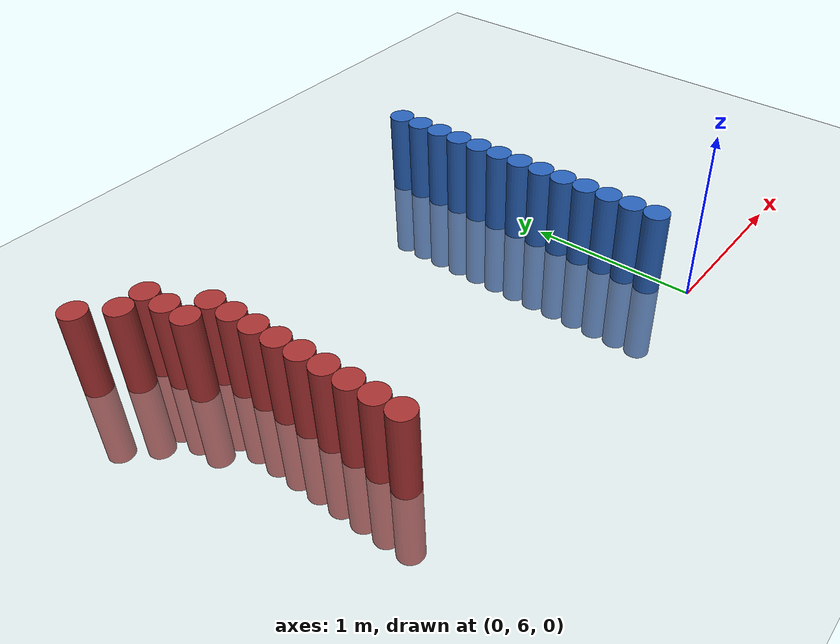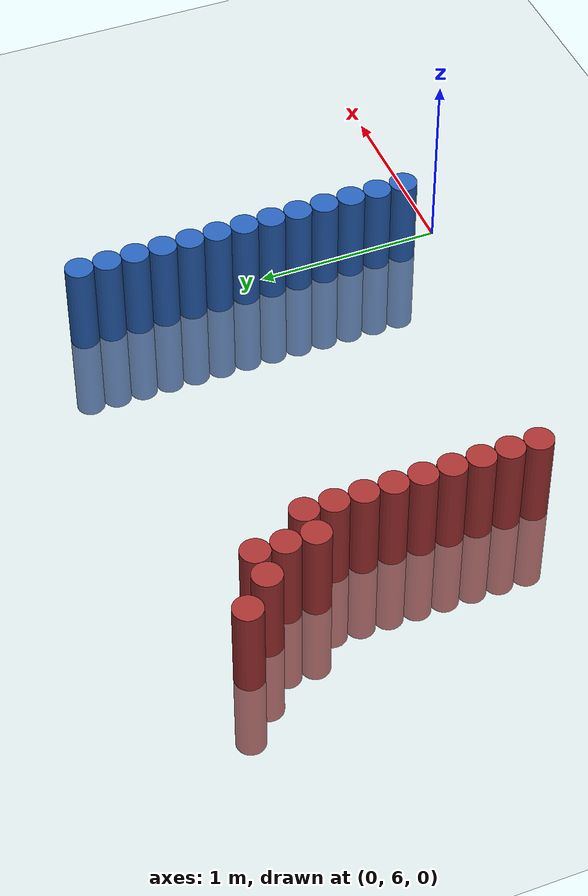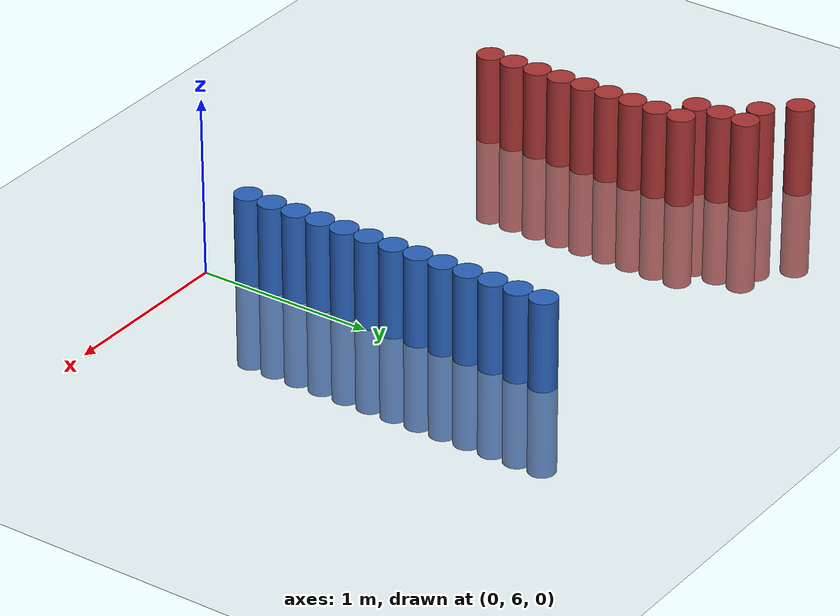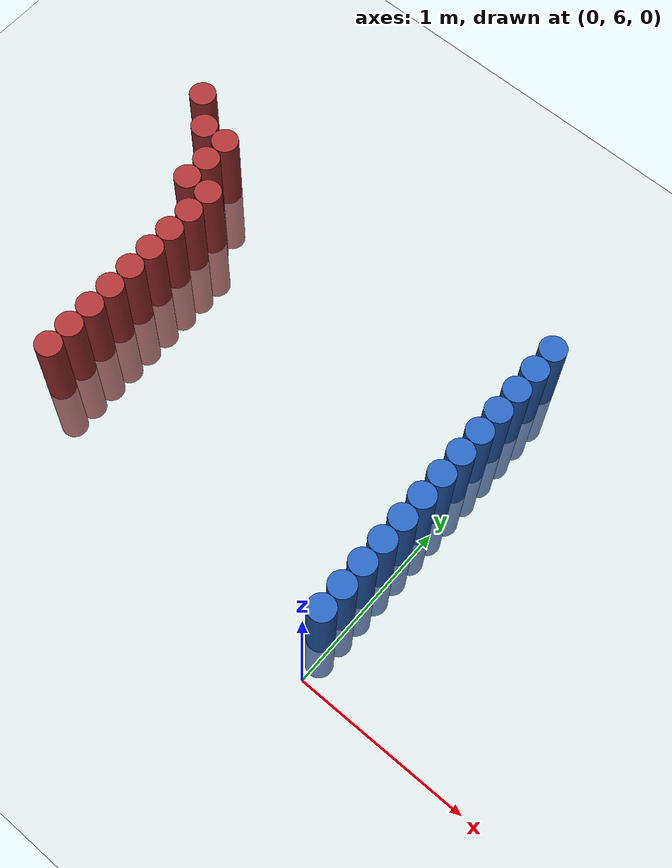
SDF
<sdf version="1.6">
 <world name="default">
  <model name="ground_plane">
   <static>1</static>
   <link name="link">
    <collision name="collision">
     <geometry><plane><normal>0 0 1</normal><size>100 100</size></plane></geometry>
     <surface><friction><ode><mu>100</mu><mu2>50</mu2></ode></friction></surface>
    </collision>
    <visual name="visual">
     <cast_shadows>0</cast_shadows>
     <geometry><plane><normal>0 0 1</normal><size>100 100</size></plane></geometry>
     <material>
      <script><uri>file://media/materials/scripts/gazebo.material</uri><name>Gazebo/Grey</name></script>
     </material>
    </visual>
   </link>
  </model>
  <model name="unit_cylinder_355">
   <static>1</static>
   <pose>-2.475000 8.025000 0.000000 0.000000 0.000000 0.000000</pose>
   <link name="link">
    <inertial>
     <mass>1</mass>
     <inertia><ixx>0.145833</ixx><ixy>0</ixy><ixz>0</ixz><iyy>0.145833</iyy><iyz>0</iyz><izz>0.125</izz></inertia>
    </inertial>
    <collision name="collision">
     <geometry><cylinder><radius>0.075000</radius><length>1</length></cylinder></geometry>
    </collision>
    <visual name="visual">
     <geometry><cylinder><radius>0.075000</radius><length>1</length></cylinder></geometry>
     <material>
      <ambient>0.648000 0.192000 0.192000 1</ambient>
      <diffuse>0.648000 0.192000 0.192000 1</diffuse>
     </material>
     <material>
      <script><name>Gazebo/Grey</name><uri>file://media/materials/scripts/gazebo.material</uri></script>
     </material>
    </visual>
   </link>
  </model>
  <model name="unit_cylinder_359">
   <static>1</static>
   <pose>-2.325000 7.875000 0.000000 0.000000 0.000000 0.000000</pose>
   <link name="link">
    <inertial>
     <mass>1</mass>
     <inertia><ixx>0.145833</ixx><ixy>0</ixy><ixz>0</ixz><iyy>0.145833</iyy><iyz>0</iyz><izz>0.125</izz></inertia>
    </inertial>
    <collision name="collision">
     <geometry><cylinder><radius>0.075000</radius><length>1</length></cylinder></geometry>
    </collision>
    <visual name="visual">
     <geometry><cylinder><radius>0.075000</radius><length>1</length></cylinder></geometry>
     <material>
      <ambient>0.648000 0.192000 0.192000 1</ambient>
      <diffuse>0.648000 0.192000 0.192000 1</diffuse>
     </material>
     <material>
      <script><name>Gazebo/Grey</name><uri>file://media/materials/scripts/gazebo.material</uri></script>
     </material>
    </visual>
   </link>
  </model>
  <model name="unit_cylinder_361">
   <static>1</static>
   <pose>-2.175000 7.575000 0.000000 0.000000 0.000000 0.000000</pose>
   <link name="link">
    <inertial>
     <mass>1</mass>
     <inertia><ixx>0.145833</ixx><ixy>0</ixy><ixz>0</ixz><iyy>0.145833</iyy><iyz>0</iyz><izz>0.125</izz></inertia>
    </inertial>
    <collision name="collision">
     <geometry><cylinder><radius>0.075000</radius><length>1</length></cylinder></geometry>
    </collision>
    <visual name="visual">
     <geometry><cylinder><radius>0.075000</radius><length>1</length></cylinder></geometry>
     <material>
      <ambient>0.648000 0.192000 0.192000 1</ambient>
      <diffuse>0.648000 0.192000 0.192000 1</diffuse>
     </material>
     <material>
      <script><name>Gazebo/Grey</name><uri>file://media/materials/scripts/gazebo.material</uri></script>
     </material>
    </visual>
   </link>
  </model>
  <model name="unit_cylinder_362">
   <static>1</static>
   <pose>-2.175000 7.725000 0.000000 0.000000 0.000000 0.000000</pose>
   <link name="link">
    <inertial>
     <mass>1</mass>
     <inertia><ixx>0.145833</ixx><ixy>0</ixy><ixz>0</ixz><iyy>0.145833</iyy><iyz>0</iyz><izz>0.125</izz></inertia>
    </inertial>
    <collision name="collision">
     <geometry><cylinder><radius>0.075000</radius><length>1</length></cylinder></geometry>
    </collision>
    <visual name="visual">
     <geometry><cylinder><radius>0.075000</radius><length>1</length></cylinder></geometry>
     <material>
      <ambient>0.648000 0.192000 0.192000 1</ambient>
      <diffuse>0.648000 0.192000 0.192000 1</diffuse>
     </material>
     <material>
      <script><name>Gazebo/Grey</name><uri>file://media/materials/scripts/gazebo.material</uri></script>
     </material>
    </visual>
   </link>
  </model>
  <model name="unit_cylinder_363">
   <static>1</static>
   <pose>-2.175000 7.875000 0.000000 0.000000 0.000000 0.000000</pose>
   <link name="link">
    <inertial>
     <mass>1</mass>
     <inertia><ixx>0.145833</ixx><ixy>0</ixy><ixz>0</ixz><iyy>0.145833</iyy><iyz>0</iyz><izz>0.125</izz></inertia>
    </inertial>
    <collision name="collision">
     <geometry><cylinder><radius>0.075000</radius><length>1</length></cylinder></geometry>
    </collision>
    <visual name="visual">
     <geometry><cylinder><radius>0.075000</radius><length>1</length></cylinder></geometry>
     <material>
      <ambient>0.648000 0.192000 0.192000 1</ambient>
      <diffuse>0.648000 0.192000 0.192000 1</diffuse>
     </material>
     <material>
      <script><name>Gazebo/Grey</name><uri>file://media/materials/scripts/gazebo.material</uri></script>
     </material>
    </visual>
   </link>
  </model>
  <model name="unit_cylinder_373">
   <static>1</static>
   <pose>-2.025000 6.375000 0.000000 0.000000 0.000000 0.000000</pose>
   <link name="link">
    <inertial>
     <mass>1</mass>
     <inertia><ixx>0.145833</ixx><ixy>0</ixy><ixz>0</ixz><iyy>0.145833</iyy><iyz>0</iyz><izz>0.125</izz></inertia>
    </inertial>
    <collision name="collision">
     <geometry><cylinder><radius>0.075000</radius><length>1</length></cylinder></geometry>
    </collision>
    <visual name="visual">
     <geometry><cylinder><radius>0.075000</radius><length>1</length></cylinder></geometry>
     <material>
      <ambient>0.648000 0.192000 0.192000 1</ambient>
      <diffuse>0.648000 0.192000 0.192000 1</diffuse>
     </material>
     <material>
      <script><name>Gazebo/Grey</name><uri>file://media/materials/scripts/gazebo.material</uri></script>
     </material>
    </visual>
   </link>
  </model>
  <model name="unit_cylinder_374">
   <static>1</static>
   <pose>-2.025000 6.525000 0.000000 0.000000 0.000000 0.000000</pose>
   <link name="link">
    <inertial>
     <mass>1</mass>
     <inertia><ixx>0.145833</ixx><ixy>0</ixy><ixz>0</ixz><iyy>0.145833</iyy><iyz>0</iyz><izz>0.125</izz></inertia>
    </inertial>
    <collision name="collision">
     <geometry><cylinder><radius>0.075000</radius><length>1</length></cylinder></geometry>
    </collision>
    <visual name="visual">
     <geometry><cylinder><radius>0.075000</radius><length>1</length></cylinder></geometry>
     <material>
      <ambient>0.648000 0.192000 0.192000 1</ambient>
      <diffuse>0.648000 0.192000 0.192000 1</diffuse>
     </material>
     <material>
      <script><name>Gazebo/Grey</name><uri>file://media/materials/scripts/gazebo.material</uri></script>
     </material>
    </visual>
   </link>
  </model>
  <model name="unit_cylinder_375">
   <static>1</static>
   <pose>-2.025000 6.675000 0.000000 0.000000 0.000000 0.000000</pose>
   <link name="link">
    <inertial>
     <mass>1</mass>
     <inertia><ixx>0.145833</ixx><ixy>0</ixy><ixz>0</ixz><iyy>0.145833</iyy><iyz>0</iyz><izz>0.125</izz></inertia>
    </inertial>
    <collision name="collision">
     <geometry><cylinder><radius>0.075000</radius><length>1</length></cylinder></geometry>
    </collision>
    <visual name="visual">
     <geometry><cylinder><radius>0.075000</radius><length>1</length></cylinder></geometry>
     <material>
      <ambient>0.648000 0.192000 0.192000 1</ambient>
      <diffuse>0.648000 0.192000 0.192000 1</diffuse>
     </material>
     <material>
      <script><name>Gazebo/Grey</name><uri>file://media/materials/scripts/gazebo.material</uri></script>
     </material>
    </visual>
   </link>
  </model>
  <model name="unit_cylinder_376">
   <static>1</static>
   <pose>-2.025000 6.825000 0.000000 0.000000 0.000000 0.000000</pose>
   <link name="link">
    <inertial>
     <mass>1</mass>
     <inertia><ixx>0.145833</ixx><ixy>0</ixy><ixz>0</ixz><iyy>0.145833</iyy><iyz>0</iyz><izz>0.125</izz></inertia>
    </inertial>
    <collision name="collision">
     <geometry><cylinder><radius>0.075000</radius><length>1</length></cylinder></geometry>
    </collision>
    <visual name="visual">
     <geometry><cylinder><radius>0.075000</radius><length>1</length></cylinder></geometry>
     <material>
      <ambient>0.648000 0.192000 0.192000 1</ambient>
      <diffuse>0.648000 0.192000 0.192000 1</diffuse>
     </material>
     <material>
      <script><name>Gazebo/Grey</name><uri>file://media/materials/scripts/gazebo.material</uri></script>
     </material>
    </visual>
   </link>
  </model>
  <model name="unit_cylinder_377">
   <static>1</static>
   <pose>-2.025000 6.975000 0.000000 0.000000 0.000000 0.000000</pose>
   <link name="link">
    <inertial>
     <mass>1</mass>
     <inertia><ixx>0.145833</ixx><ixy>0</ixy><ixz>0</ixz><iyy>0.145833</iyy><iyz>0</iyz><izz>0.125</izz></inertia>
    </inertial>
    <collision name="collision">
     <geometry><cylinder><radius>0.075000</radius><length>1</length></cylinder></geometry>
    </collision>
    <visual name="visual">
     <geometry><cylinder><radius>0.075000</radius><length>1</length></cylinder></geometry>
     <material>
      <ambient>0.648000 0.192000 0.192000 1</ambient>
      <diffuse>0.648000 0.192000 0.192000 1</diffuse>
     </material>
     <material>
      <script><name>Gazebo/Grey</name><uri>file://media/materials/scripts/gazebo.material</uri></script>
     </material>
    </visual>
   </link>
  </model>
  <model name="unit_cylinder_378">
   <static>1</static>
   <pose>-2.025000 7.125000 0.000000 0.000000 0.000000 0.000000</pose>
   <link name="link">
    <inertial>
     <mass>1</mass>
     <inertia><ixx>0.145833</ixx><ixy>0</ixy><ixz>0</ixz><iyy>0.145833</iyy><iyz>0</iyz><izz>0.125</izz></inertia>
    </inertial>
    <collision name="collision">
     <geometry><cylinder><radius>0.075000</radius><length>1</length></cylinder></geometry>
    </collision>
    <visual name="visual">
     <geometry><cylinder><radius>0.075000</radius><length>1</length></cylinder></geometry>
     <material>
      <ambient>0.648000 0.192000 0.192000 1</ambient>
      <diffuse>0.648000 0.192000 0.192000 1</diffuse>
     </material>
     <material>
      <script><name>Gazebo/Grey</name><uri>file://media/materials/scripts/gazebo.material</uri></script>
     </material>
    </visual>
   </link>
  </model>
  <model name="unit_cylinder_379">
   <static>1</static>
   <pose>-2.025000 7.275000 0.000000 0.000000 0.000000 0.000000</pose>
   <link name="link">
    <inertial>
     <mass>1</mass>
     <inertia><ixx>0.145833</ixx><ixy>0</ixy><ixz>0</ixz><iyy>0.145833</iyy><iyz>0</iyz><izz>0.125</izz></inertia>
    </inertial>
    <collision name="collision">
     <geometry><cylinder><radius>0.075000</radius><length>1</length></cylinder></geometry>
    </collision>
    <visual name="visual">
     <geometry><cylinder><radius>0.075000</radius><length>1</length></cylinder></geometry>
     <material>
      <ambient>0.648000 0.192000 0.192000 1</ambient>
      <diffuse>0.648000 0.192000 0.192000 1</diffuse>
     </material>
     <material>
      <script><name>Gazebo/Grey</name><uri>file://media/materials/scripts/gazebo.material</uri></script>
     </material>
    </visual>
   </link>
  </model>
  <model name="unit_cylinder_380">
   <static>1</static>
   <pose>-2.025000 7.425000 0.000000 0.000000 0.000000 0.000000</pose>
   <link name="link">
    <inertial>
     <mass>1</mass>
     <inertia><ixx>0.145833</ixx><ixy>0</ixy><ixz>0</ixz><iyy>0.145833</iyy><iyz>0</iyz><izz>0.125</izz></inertia>
    </inertial>
    <collision name="collision">
     <geometry><cylinder><radius>0.075000</radius><length>1</length></cylinder></geometry>
    </collision>
    <visual name="visual">
     <geometry><cylinder><radius>0.075000</radius><length>1</length></cylinder></geometry>
     <material>
      <ambient>0.648000 0.192000 0.192000 1</ambient>
      <diffuse>0.648000 0.192000 0.192000 1</diffuse>
     </material>
     <material>
      <script><name>Gazebo/Grey</name><uri>file://media/materials/scripts/gazebo.material</uri></script>
     </material>
    </visual>
   </link>
  </model>
  <model name="unit_cylinder_381">
   <static>1</static>
   <pose>-2.025000 7.575000 0.000000 0.000000 0.000000 0.000000</pose>
   <link name="link">
    <inertial>
     <mass>1</mass>
     <inertia><ixx>0.145833</ixx><ixy>0</ixy><ixz>0</ixz><iyy>0.145833</iyy><iyz>0</iyz><izz>0.125</izz></inertia>
    </inertial>
    <collision name="collision">
     <geometry><cylinder><radius>0.075000</radius><length>1</length></cylinder></geometry>
    </collision>
    <visual name="visual">
     <geometry><cylinder><radius>0.075000</radius><length>1</length></cylinder></geometry>
     <material>
      <ambient>0.648000 0.192000 0.192000 1</ambient>
      <diffuse>0.648000 0.192000 0.192000 1</diffuse>
     </material>
     <material>
      <script><name>Gazebo/Grey</name><uri>file://media/materials/scripts/gazebo.material</uri></script>
     </material>
    </visual>
   </link>
  </model>
  <model name="unit_cylinder_414">
   <static>1</static>
   <pose>-0.075000 6.225000 0.000000 0.000000 0.000000 0.000000</pose>
   <link name="link">
    <inertial>
     <mass>1</mass>
     <inertia><ixx>0.145833</ixx><ixy>0</ixy><ixz>0</ixz><iyy>0.145833</iyy><iyz>0</iyz><izz>0.125</izz></inertia>
    </inertial>
    <collision name="collision">
     <geometry><cylinder><radius>0.075000</radius><length>1</length></cylinder></geometry>
    </collision>
    <visual name="visual">
     <geometry><cylinder><radius>0.075000</radius><length>1</length></cylinder></geometry>
     <material>
      <ambient>0.152000 0.379000 0.720000 1</ambient>
      <diffuse>0.152000 0.379000 0.720000 1</diffuse>
     </material>
     <material>
      <script><name>Gazebo/Grey</name><uri>file://media/materials/scripts/gazebo.material</uri></script>
     </material>
    </visual>
   </link>
  </model>
  <model name="unit_cylinder_415">
   <static>1</static>
   <pose>-0.075000 6.375000 0.000000 0.000000 0.000000 0.000000</pose>
   <link name="link">
    <inertial>
     <mass>1</mass>
     <inertia><ixx>0.145833</ixx><ixy>0</ixy><ixz>0</ixz><iyy>0.145833</iyy><iyz>0</iyz><izz>0.125</izz></inertia>
    </inertial>
    <collision name="collision">
     <geometry><cylinder><radius>0.075000</radius><length>1</length></cylinder></geometry>
    </collision>
    <visual name="visual">
     <geometry><cylinder><radius>0.075000</radius><length>1</length></cylinder></geometry>
     <material>
      <ambient>0.152000 0.379000 0.720000 1</ambient>
      <diffuse>0.152000 0.379000 0.720000 1</diffuse>
     </material>
     <material>
      <script><name>Gazebo/Grey</name><uri>file://media/materials/scripts/gazebo.material</uri></script>
     </material>
    </visual>
   </link>
  </model>
  <model name="unit_cylinder_416">
   <static>1</static>
   <pose>-0.075000 6.525000 0.000000 0.000000 0.000000 0.000000</pose>
   <link name="link">
    <inertial>
     <mass>1</mass>
     <inertia><ixx>0.145833</ixx><ixy>0</ixy><ixz>0</ixz><iyy>0.145833</iyy><iyz>0</iyz><izz>0.125</izz></inertia>
    </inertial>
    <collision name="collision">
     <geometry><cylinder><radius>0.075000</radius><length>1</length></cylinder></geometry>
    </collision>
    <visual name="visual">
     <geometry><cylinder><radius>0.075000</radius><length>1</length></cylinder></geometry>
     <material>
      <ambient>0.152000 0.379000 0.720000 1</ambient>
      <diffuse>0.152000 0.379000 0.720000 1</diffuse>
     </material>
     <material>
      <script><name>Gazebo/Grey</name><uri>file://media/materials/scripts/gazebo.material</uri></script>
     </material>
    </visual>
   </link>
  </model>
  <model name="unit_cylinder_417">
   <static>1</static>
   <pose>-0.075000 6.675000 0.000000 0.000000 0.000000 0.000000</pose>
   <link name="link">
    <inertial>
     <mass>1</mass>
     <inertia><ixx>0.145833</ixx><ixy>0</ixy><ixz>0</ixz><iyy>0.145833</iyy><iyz>0</iyz><izz>0.125</izz></inertia>
    </inertial>
    <collision name="collision">
     <geometry><cylinder><radius>0.075000</radius><length>1</length></cylinder></geometry>
    </collision>
    <visual name="visual">
     <geometry><cylinder><radius>0.075000</radius><length>1</length></cylinder></geometry>
     <material>
      <ambient>0.152000 0.379000 0.720000 1</ambient>
      <diffuse>0.152000 0.379000 0.720000 1</diffuse>
     </material>
     <material>
      <script><name>Gazebo/Grey</name><uri>file://media/materials/scripts/gazebo.material</uri></script>
     </material>
    </visual>
   </link>
  </model>
  <model name="unit_cylinder_418">
   <static>1</static>
   <pose>-0.075000 6.825000 0.000000 0.000000 0.000000 0.000000</pose>
   <link name="link">
    <inertial>
     <mass>1</mass>
     <inertia><ixx>0.145833</ixx><ixy>0</ixy><ixz>0</ixz><iyy>0.145833</iyy><iyz>0</iyz><izz>0.125</izz></inertia>
    </inertial>
    <collision name="collision">
     <geometry><cylinder><radius>0.075000</radius><length>1</length></cylinder></geometry>
    </collision>
    <visual name="visual">
     <geometry><cylinder><radius>0.075000</radius><length>1</length></cylinder></geometry>
     <material>
      <ambient>0.152000 0.379000 0.720000 1</ambient>
      <diffuse>0.152000 0.379000 0.720000 1</diffuse>
     </material>
     <material>
      <script><name>Gazebo/Grey</name><uri>file://media/materials/scripts/gazebo.material</uri></script>
     </material>
    </visual>
   </link>
  </model>
  <model name="unit_cylinder_419">
   <static>1</static>
   <pose>-0.075000 6.975000 0.000000 0.000000 0.000000 0.000000</pose>
   <link name="link">
    <inertial>
     <mass>1</mass>
     <inertia><ixx>0.145833</ixx><ixy>0</ixy><ixz>0</ixz><iyy>0.145833</iyy><iyz>0</iyz><izz>0.125</izz></inertia>
    </inertial>
    <collision name="collision">
     <geometry><cylinder><radius>0.075000</radius><length>1</length></cylinder></geometry>
    </collision>
    <visual name="visual">
     <geometry><cylinder><radius>0.075000</radius><length>1</length></cylinder></geometry>
     <material>
      <ambient>0.152000 0.379000 0.720000 1</ambient>
      <diffuse>0.152000 0.379000 0.720000 1</diffuse>
     </material>
     <material>
      <script><name>Gazebo/Grey</name><uri>file://media/materials/scripts/gazebo.material</uri></script>
     </material>
    </visual>
   </link>
  </model>
  <model name="unit_cylinder_420">
   <static>1</static>
   <pose>-0.075000 7.125000 0.000000 0.000000 0.000000 0.000000</pose>
   <link name="link">
    <inertial>
     <mass>1</mass>
     <inertia><ixx>0.145833</ixx><ixy>0</ixy><ixz>0</ixz><iyy>0.145833</iyy><iyz>0</iyz><izz>0.125</izz></inertia>
    </inertial>
    <collision name="collision">
     <geometry><cylinder><radius>0.075000</radius><length>1</length></cylinder></geometry>
    </collision>
    <visual name="visual">
     <geometry><cylinder><radius>0.075000</radius><length>1</length></cylinder></geometry>
     <material>
      <ambient>0.152000 0.379000 0.720000 1</ambient>
      <diffuse>0.152000 0.379000 0.720000 1</diffuse>
     </material>
     <material>
      <script><name>Gazebo/Grey</name><uri>file://media/materials/scripts/gazebo.material</uri></script>
     </material>
    </visual>
   </link>
  </model>
  <model name="unit_cylinder_421">
   <static>1</static>
   <pose>-0.075000 7.275000 0.000000 0.000000 0.000000 0.000000</pose>
   <link name="link">
    <inertial>
     <mass>1</mass>
     <inertia><ixx>0.145833</ixx><ixy>0</ixy><ixz>0</ixz><iyy>0.145833</iyy><iyz>0</iyz><izz>0.125</izz></inertia>
    </inertial>
    <collision name="collision">
     <geometry><cylinder><radius>0.075000</radius><length>1</length></cylinder></geometry>
    </collision>
    <visual name="visual">
     <geometry><cylinder><radius>0.075000</radius><length>1</length></cylinder></geometry>
     <material>
      <ambient>0.152000 0.379000 0.720000 1</ambient>
      <diffuse>0.152000 0.379000 0.720000 1</diffuse>
     </material>
     <material>
      <script><name>Gazebo/Grey</name><uri>file://media/materials/scripts/gazebo.material</uri></script>
     </material>
    </visual>
   </link>
  </model>
  <model name="unit_cylinder_422">
   <static>1</static>
   <pose>-0.075000 7.425000 0.000000 0.000000 0.000000 0.000000</pose>
   <link name="link">
    <inertial>
     <mass>1</mass>
     <inertia><ixx>0.145833</ixx><ixy>0</ixy><ixz>0</ixz><iyy>0.145833</iyy><iyz>0</iyz><izz>0.125</izz></inertia>
    </inertial>
    <collision name="collision">
     <geometry><cylinder><radius>0.075000</radius><length>1</length></cylinder></geometry>
    </collision>
    <visual name="visual">
     <geometry><cylinder><radius>0.075000</radius><length>1</length></cylinder></geometry>
     <material>
      <ambient>0.152000 0.379000 0.720000 1</ambient>
      <diffuse>0.152000 0.379000 0.720000 1</diffuse>
     </material>
     <material>
      <script><name>Gazebo/Grey</name><uri>file://media/materials/scripts/gazebo.material</uri></script>
     </material>
    </visual>
   </link>
  </model>
  <model name="unit_cylinder_423">
   <static>1</static>
   <pose>-0.075000 7.575000 0.000000 0.000000 0.000000 0.000000</pose>
   <link name="link">
    <inertial>
     <mass>1</mass>
     <inertia><ixx>0.145833</ixx><ixy>0</ixy><ixz>0</ixz><iyy>0.145833</iyy><iyz>0</iyz><izz>0.125</izz></inertia>
    </inertial>
    <collision name="collision">
     <geometry><cylinder><radius>0.075000</radius><length>1</length></cylinder></geometry>
    </collision>
    <visual name="visual">
     <geometry><cylinder><radius>0.075000</radius><length>1</length></cylinder></geometry>
     <material>
      <ambient>0.152000 0.379000 0.720000 1</ambient>
      <diffuse>0.152000 0.379000 0.720000 1</diffuse>
     </material>
     <material>
      <script><name>Gazebo/Grey</name><uri>file://media/materials/scripts/gazebo.material</uri></script>
     </material>
    </visual>
   </link>
  </model>
  <model name="unit_cylinder_424">
   <static>1</static>
   <pose>-0.075000 7.725000 0.000000 0.000000 0.000000 0.000000</pose>
   <link name="link">
    <inertial>
     <mass>1</mass>
     <inertia><ixx>0.145833</ixx><ixy>0</ixy><ixz>0</ixz><iyy>0.145833</iyy><iyz>0</iyz><izz>0.125</izz></inertia>
    </inertial>
    <collision name="collision">
     <geometry><cylinder><radius>0.075000</radius><length>1</length></cylinder></geometry>
    </collision>
    <visual name="visual">
     <geometry><cylinder><radius>0.075000</radius><length>1</length></cylinder></geometry>
     <material>
      <ambient>0.152000 0.379000 0.720000 1</ambient>
      <diffuse>0.152000 0.379000 0.720000 1</diffuse>
     </material>
     <material>
      <script><name>Gazebo/Grey</name><uri>file://media/materials/scripts/gazebo.material</uri></script>
     </material>
    </visual>
   </link>
  </model>
  <model name="unit_cylinder_425">
   <static>1</static>
   <pose>-0.075000 7.875000 0.000000 0.000000 0.000000 0.000000</pose>
   <link name="link">
    <inertial>
     <mass>1</mass>
     <inertia><ixx>0.145833</ixx><ixy>0</ixy><ixz>0</ixz><iyy>0.145833</iyy><iyz>0</iyz><izz>0.125</izz></inertia>
    </inertial>
    <collision name="collision">
     <geometry><cylinder><radius>0.075000</radius><length>1</length></cylinder></geometry>
    </collision>
    <visual name="visual">
     <geometry><cylinder><radius>0.075000</radius><length>1</length></cylinder></geometry>
     <material>
      <ambient>0.152000 0.379000 0.720000 1</ambient>
      <diffuse>0.152000 0.379000 0.720000 1</diffuse>
     </material>
     <material>
      <script><name>Gazebo/Grey</name><uri>file://media/materials/scripts/gazebo.material</uri></script>
     </material>
    </visual>
   </link>
  </model>
  <model name="unit_cylinder_426">
   <static>1</static>
   <pose>-0.075000 8.025000 0.000000 0.000000 0.000000 0.000000</pose>
   <link name="link">
    <inertial>
     <mass>1</mass>
     <inertia><ixx>0.145833</ixx><ixy>0</ixy><ixz>0</ixz><iyy>0.145833</iyy><iyz>0</iyz><izz>0.125</izz></inertia>
    </inertial>
    <collision name="collision">
     <geometry><cylinder><radius>0.075000</radius><length>1</length></cylinder></geometry>
    </collision>
    <visual name="visual">
     <geometry><cylinder><radius>0.075000</radius><length>1</length></cylinder></geometry>
     <material>
      <ambient>0.152000 0.379000 0.720000 1</ambient>
      <diffuse>0.152000 0.379000 0.720000 1</diffuse>
     </material>
     <material>
      <script><name>Gazebo/Grey</name><uri>file://media/materials/scripts/gazebo.material</uri></script>
     </material>
    </visual>
   </link>
  </model>
 </world>
</sdf>
